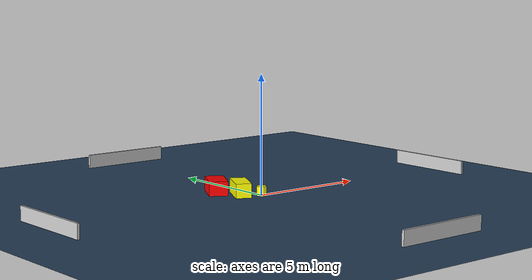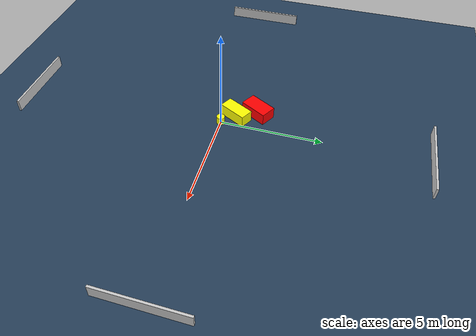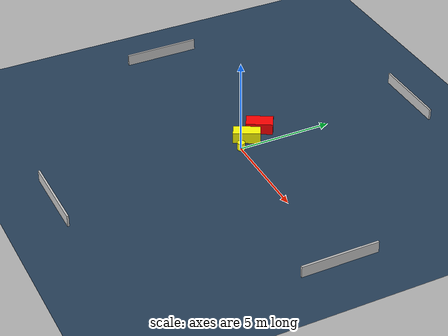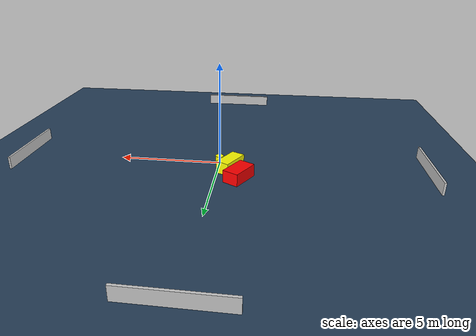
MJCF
<?xml version="1.0" ?>
<mujoco model="generated_environment">
  <option timestep="0.01" integrator="RK4" cone="elliptic"/>
  <default>
    <geom density="1"/>
  </default>
  <asset>
    <texture builtin="gradient" height="3072" name="skybox" rgb1="0.3 0.5 0.7" rgb2="0 0 0" type="skybox" width="512"/>
    <texture builtin="checker" height="300" name="groundplane" rgb1="0.2 0.3 0.4" rgb2="0.1 0.2 0.3" type="2d" width="300"/>
    <material name="groundplane" reflectance="0.2" texrepeat="5 5" texture="groundplane"/>
  </asset>
  <worldbody>
    <light dir="0 0 -1" directional="true" pos="0 0 1.5"/>
    <geom condim="3" friction="0.5 0.005 0.001" material="groundplane" name="floor" pos="0 0 0" size="0 0 0.05" type="plane"/>
    <body name="walls">
      <geom name="wall_1" condim="4" pos="-10.0 0.0 0.3" rgba="0.800000011920929 0.800000011920929 0.800000011920929 1.0" size="0.05 2.0 0.3" type="box"/>
      <geom name="wall_2" condim="4" pos="10.0 0.0 0.3" rgba="0.800000011920929 0.800000011920929 0.800000011920929 1.0" size="0.05 2.0 0.3" type="box"/>
      <geom name="wall_3" condim="4" pos="0.0 -10.0 0.3" rgba="0.800000011920929 0.800000011920929 0.800000011920929 1.0" size="2.0 0.05 0.3" type="box"/>
      <geom name="wall_4" condim="4" pos="0.0 10.0 0.3" rgba="0.800000011920929 0.800000011920929 0.800000011920929 1.0" size="2.0 0.05 0.3" type="box"/>
    </body>
    <body name="robot">
      <joint name="joint_x" type="slide" pos="0 0 0" axis="1 0 0"/>
      <joint name="joint_y" type="slide" pos="0 0 0" axis="0 1 0"/>
      <geom name="robot" type="cylinder" pos="0.0 0.0 0.2" size="0.2 0.2 0.0" mass="5.0" friction="1.0 0.005 0.0001" condim="4" rgba="1.0 1.0 0.0 1.0"/>
    </body>
    <body name="obstacle_1_movable">
      <geom name="obstacle_1_movable" condim="4" pos="-0.6002962127922545 0.6258757150588182 0.3" euler="0 0 332.0389263277505" friction="0.0 0.005 0.001" rgba="1.0 1.0 0.0 1.0" size="0.32958105655487235 0.7048007668799614 0.3" type="box" mass="0.1"/>
      <joint type="free"/>
    </body>
    <body name="obstacle_2_static">
      <geom name="obstacle_2_static" condim="4" pos="-1.1017012046881407 1.6131224328655662 0.3" euler="0 0 60.398025475027445" friction="0.0 0.005 0.001" rgba="1.0 0.0 0.0 1.0" size="0.6987586904384185 0.39601288308880556 0.3" type="box"/>
    </body>
  </worldbody>
  <actuator>
    <motor name="actuator_x" joint="joint_x" gear="1" ctrlrange="-1 1"/>
    <motor name="actuator_y" joint="joint_y" gear="1" ctrlrange="-1 1"/>
  </actuator>
</mujoco>
